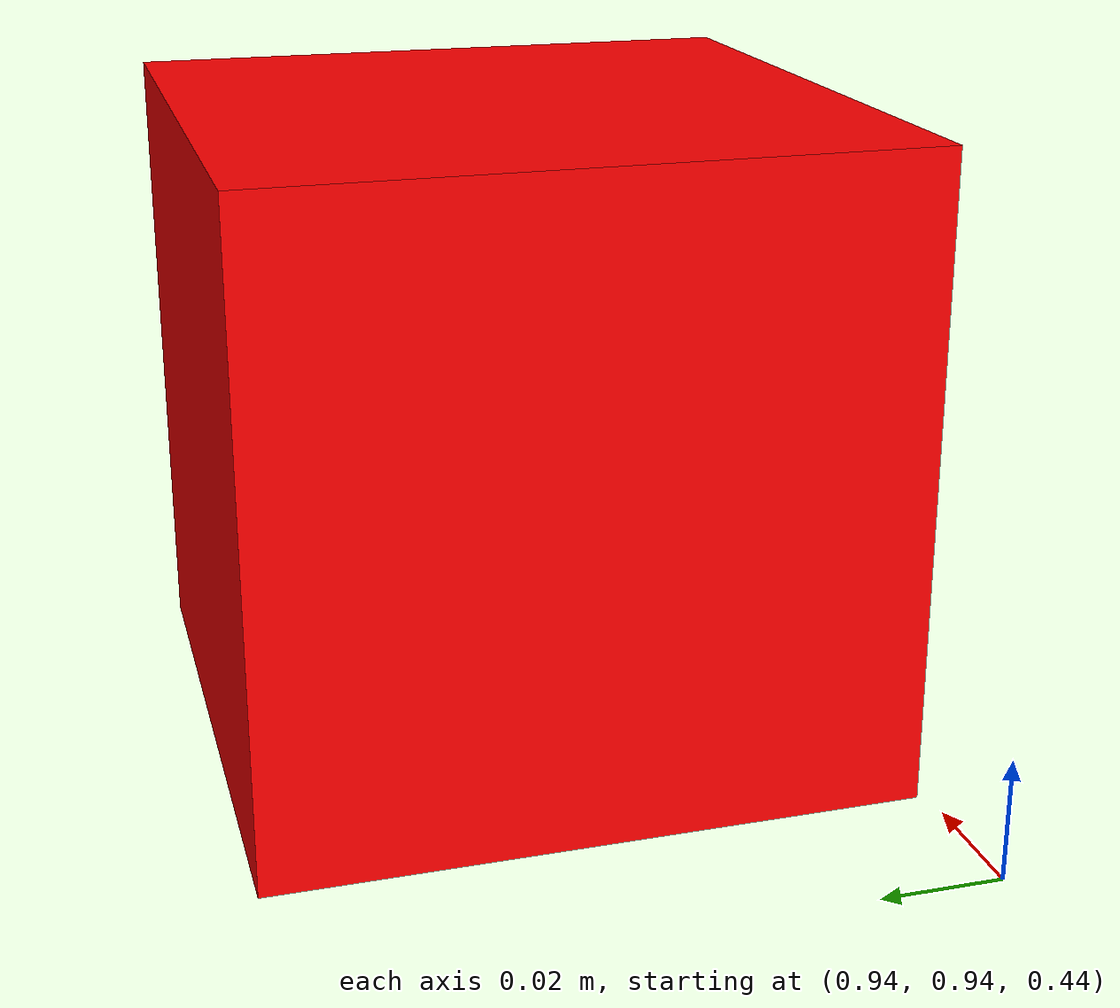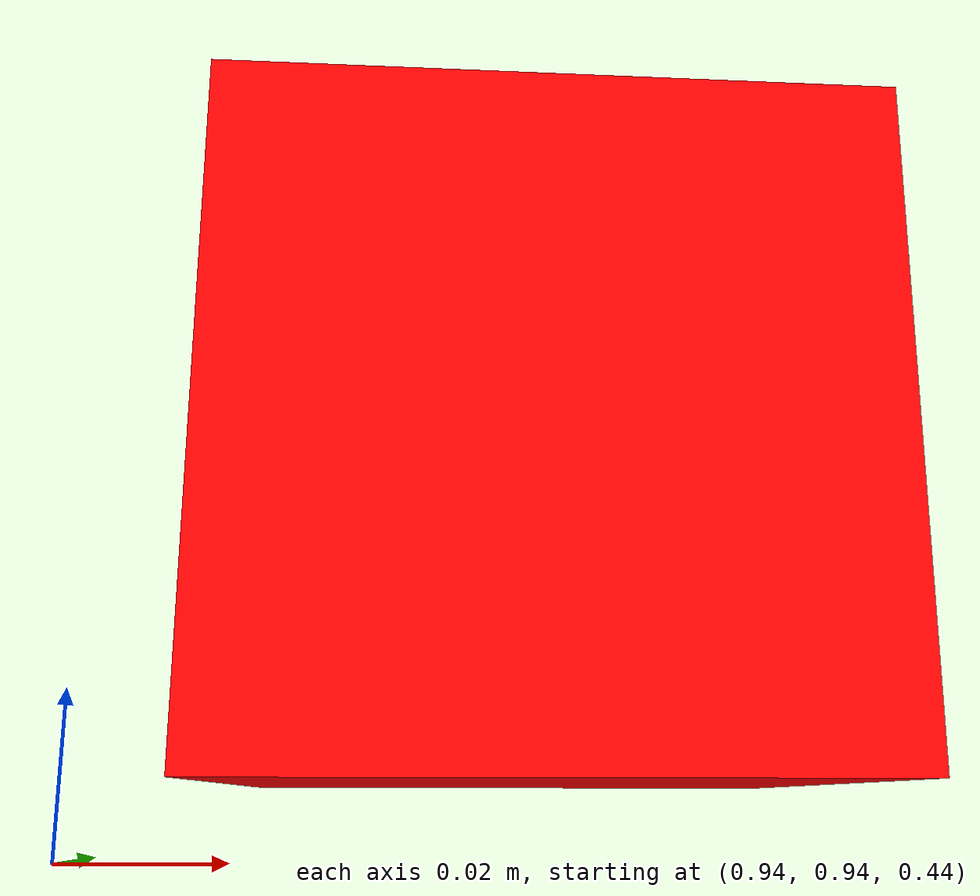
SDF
<?xml version="1.0" ?>
<sdf version="1.4">
  <model name="radiation_sensor">
    <pose>1 1 0.5 0 0 0</pose>
    <static>true</static>
    <link name="link">
      <collision name="collision">
        <geometry>
          <box>
            <size>0.01 0.01 0.01</size>
          </box>
        </geometry>
      </collision>
      <visual name="visual">
        <geometry>
          <box>
            <size>0.1 0.1 0.1</size>
          </box>
        </geometry>
        <material>
          <ambient>1 0 0 1</ambient>
          <diffuse>1 0 0 1</diffuse>
        </material>
      </visual>
      <sensor name="radiation_sensor" type="radiation_sensor">
        <always_on> 1 </always_on>
        <update_rate> 30 </update_rate>
        <topic>sensor_0</topic>
        <plugin filename="libradiation_sensor_plugin.so" name="radiation_sensor_plugin" />
      </sensor>
    </link>
  </model>
</sdf>
